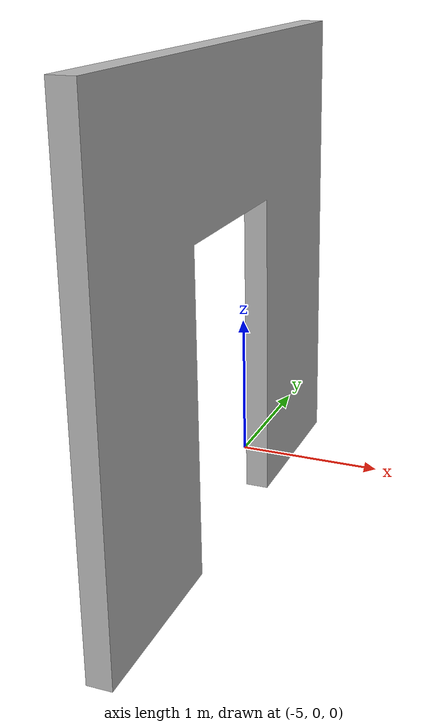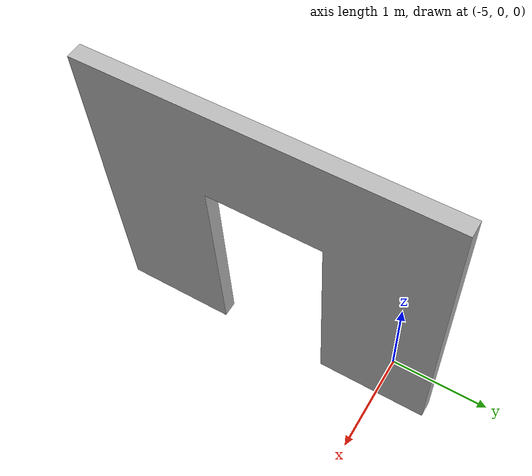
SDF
<?xml version="1.0"?>
<sdf version="1.5">
    <model name="wall3_without_thresholds">
        <static>true</static>
        <link name="link">
            <collision name="collision">
                <pose>0 0 0.05 0 0 0</pose>
                <geometry>
                    <mesh>
                        <uri>model://wall3_without_thresholds/meshes/wall3.dae</uri>
                        <scale>1.0 1.0 1.0</scale>
                    </mesh>
                </geometry>
            </collision>
            <visual name="visual">
              <pose>0 0 0.05 0 0 0</pose>
              <geometry>
              <mesh>
                 <uri>model://wall3_without_thresholds/meshes/wall3.dae</uri>
                 <scale>1.0 1.0 1.0</scale>
              </mesh>
              </geometry>
             </visual>
        </link>
    </model>
</sdf>
